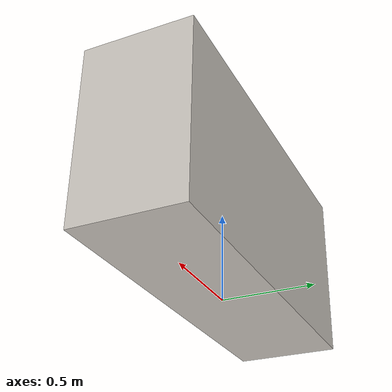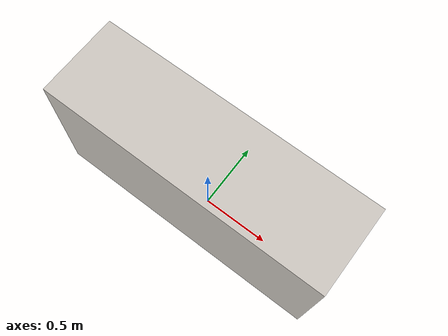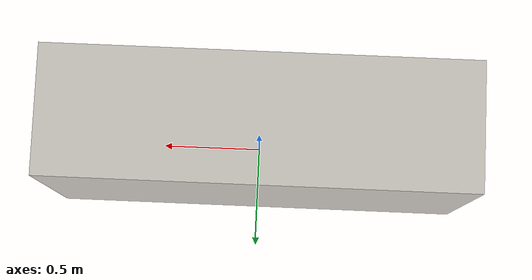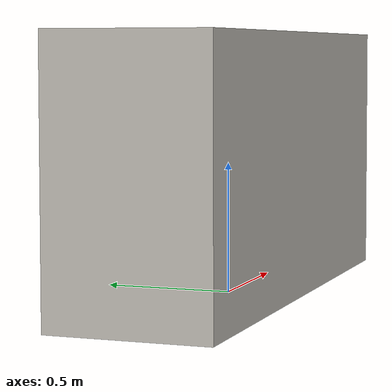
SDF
<?xml version="1.0"?>
<sdf version="1.10">
  <model name="concrete_barrier">
    <static>true</static>
    <link name="link">
      <collision name="collision">
        <geometry>
          <box>
            <size>2.0 0.6 1.0</size>
          </box>
        </geometry>
      </collision>
      <visual name="visual">
        <geometry>
          <box>
            <size>2.0 0.6 1.0</size>
          </box>
        </geometry>
        <material>
          <ambient>0.75 0.72 0.68 1</ambient>
          <diffuse>0.8 0.78 0.75 1</diffuse>
          <specular>0.2 0.2 0.2 1</specular>
        </material>
      </visual>
      <pose>0 0 0.5 0 0 0</pose>
    </link>
  </model>
</sdf>
